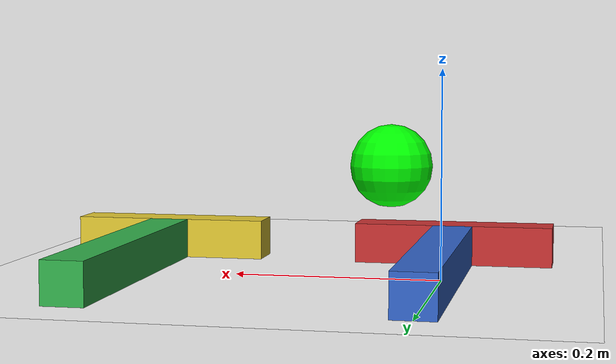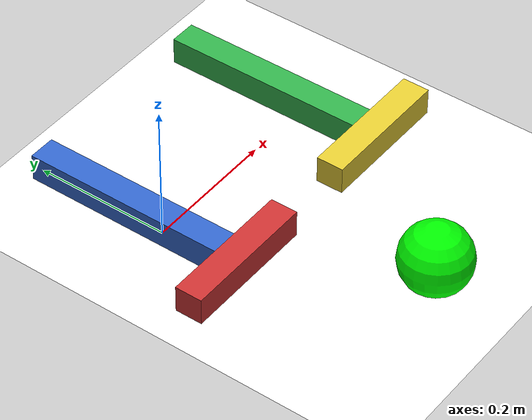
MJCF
<mujoco model="two_tblocks_tool">
  <asset>
    <texture name="tex_floor_checker" type="2d" builtin="checker"
             width="512" height="512" rgb1="0.90 0.90 0.90" rgb2="0.72 0.72 0.72"/>
    <material name="mat_floor_checker" texture="tex_floor_checker" texrepeat="20 20"
              texuniform="true" reflectance="0.05" shininess="0.2" specular="0.1" rgba="1 1 1 1"/>
  </asset>

  <compiler angle="radian"/>
  <option timestep="0.002" integrator="implicitfast"/>

  <default>
    <geom friction="0.7 0.005 0.0001" density="800"/>
  </default>

  <worldbody>
    <light name="scene_light" pos="0 0 1.5" dir="0 0 -1" directional="true"/>
    <geom name="floor" type="plane" size="5 5 0.1" pos="0 0 0" material="mat_floor_checker" rgba="1 1 1 1"/>

    <!-- Block A (compsim body) -->
    <body name="T_siconos" pos="0.00 0.00 0.02" quat="0.707 0.707 0 0">
      <freejoint name="root_siconos"/>
      <geom name="T_stem_s" type="box" size="0.02 0.02 0.15" pos="0 0 -0.05"
            rgba="0.2 0.4 0.8 1" contype="0" conaffinity="0"/>
      <geom name="T_top_s" type="box" size="0.10 0.02 0.02" pos="0 0 0.12"
            rgba="0.8 0.2 0.2 1" contype="0" conaffinity="0"/>
    </body>

    <!-- Block B (same geometry) -->
    <body name="T_siconos2" pos="0.30 0.00 0.02" quat="0.707 0.707 0 0">
      <freejoint name="root_siconos2"/>
      <geom name="T_stem_s2" type="box" size="0.02 0.02 0.15" pos="0 0 -0.05"
            rgba="0.2 0.7 0.3 1" contype="0" conaffinity="0"/>
      <geom name="T_top_s2" type="box" size="0.10 0.02 0.02" pos="0 0 0.12"
            rgba="0.9 0.8 0.2 1" contype="0" conaffinity="0"/>
    </body>

    <!-- Drag target (red) -->
    <body name="target_mocap" mocap="true" pos="0.10 -0.35 0.08">
      <geom name="target_vis" type="sphere" size="0.005" rgba="1 0 0 0.5" contype="0" conaffinity="0"/>
    </body>

    <!-- Dynamic tool (green); controlled in Python to track target_mocap -->
    <body name="tool_mocap" mocap="true" pos="0.10 -0.35 0.08">
      <geom name="tool_vis" type="sphere" size="0.05" rgba="0 1 0 0.9" contype="0" conaffinity="0"/>
    </body>

  </worldbody>
</mujoco>
